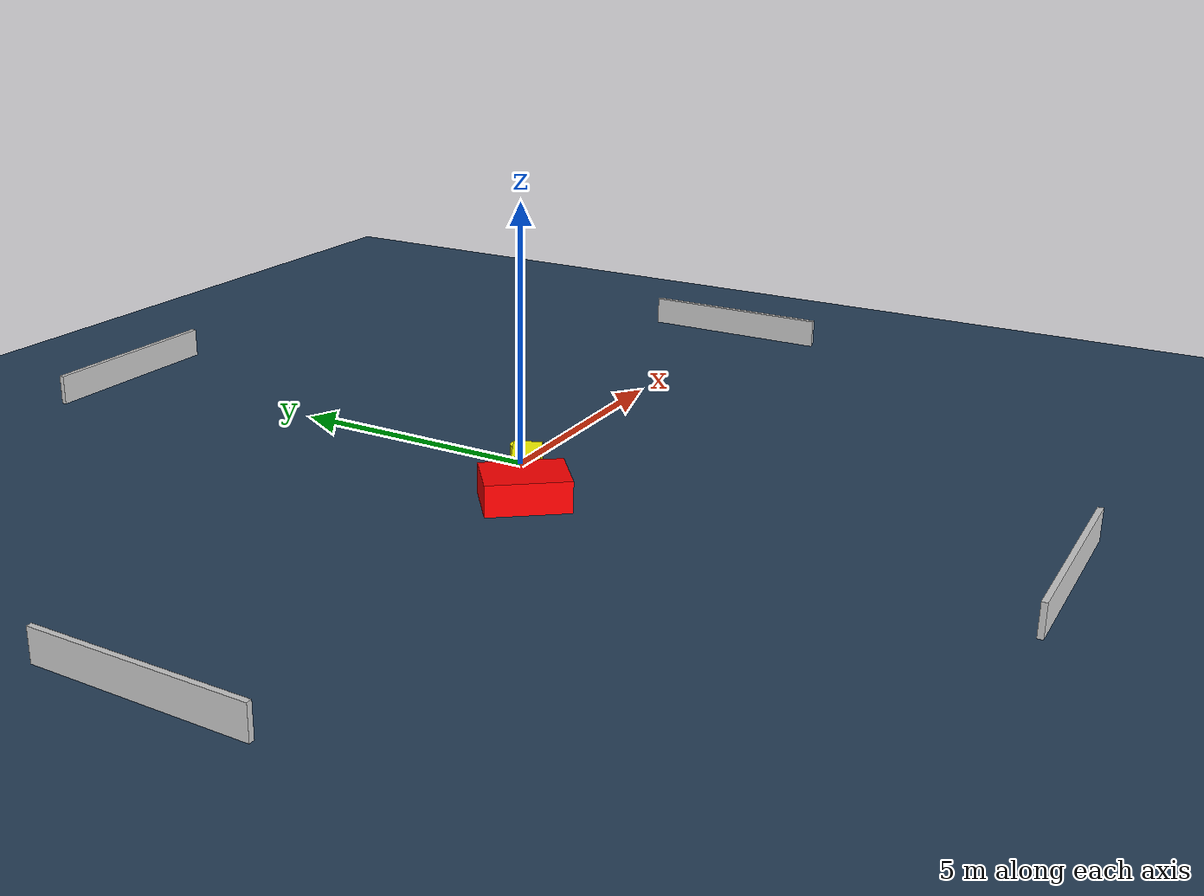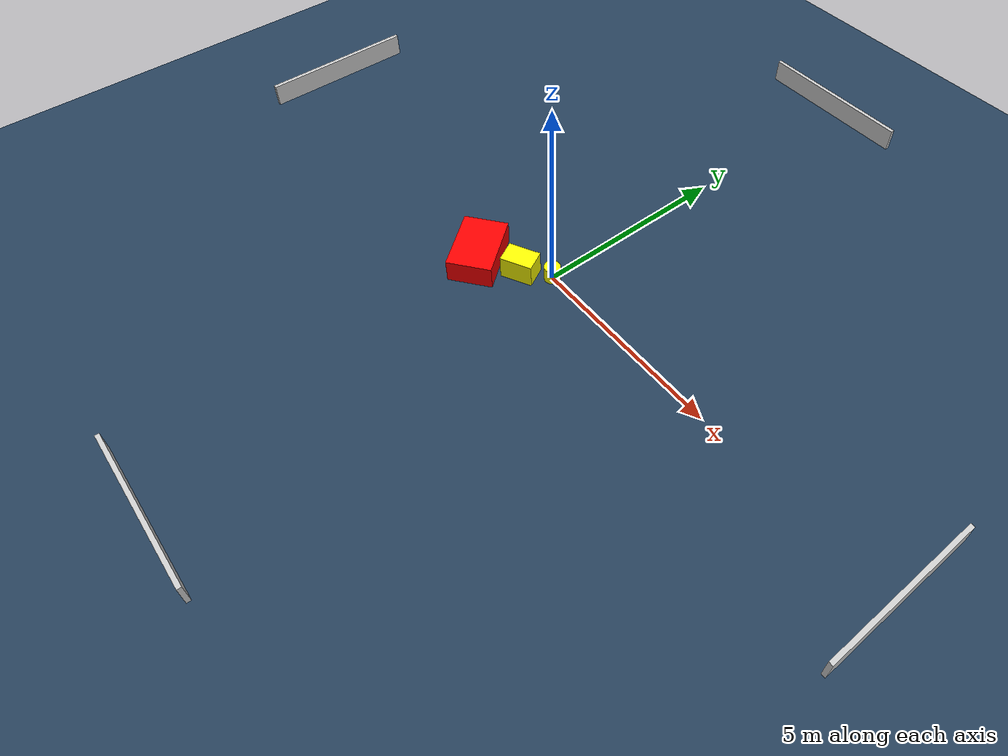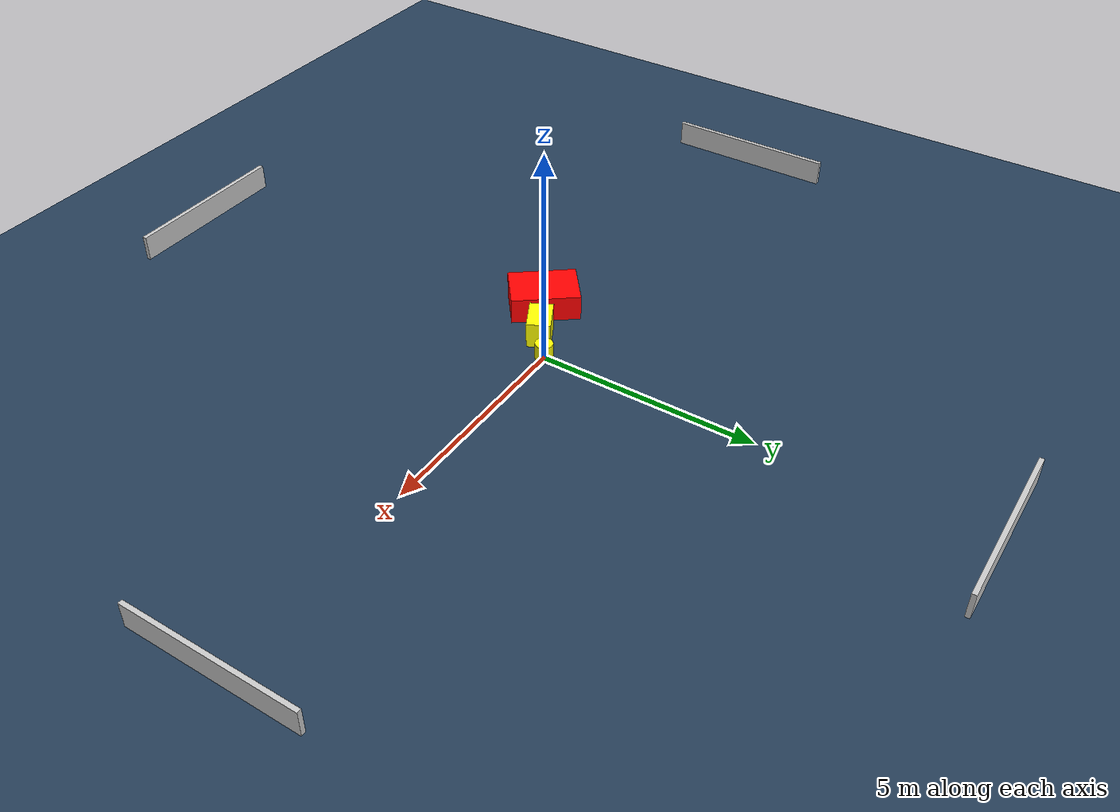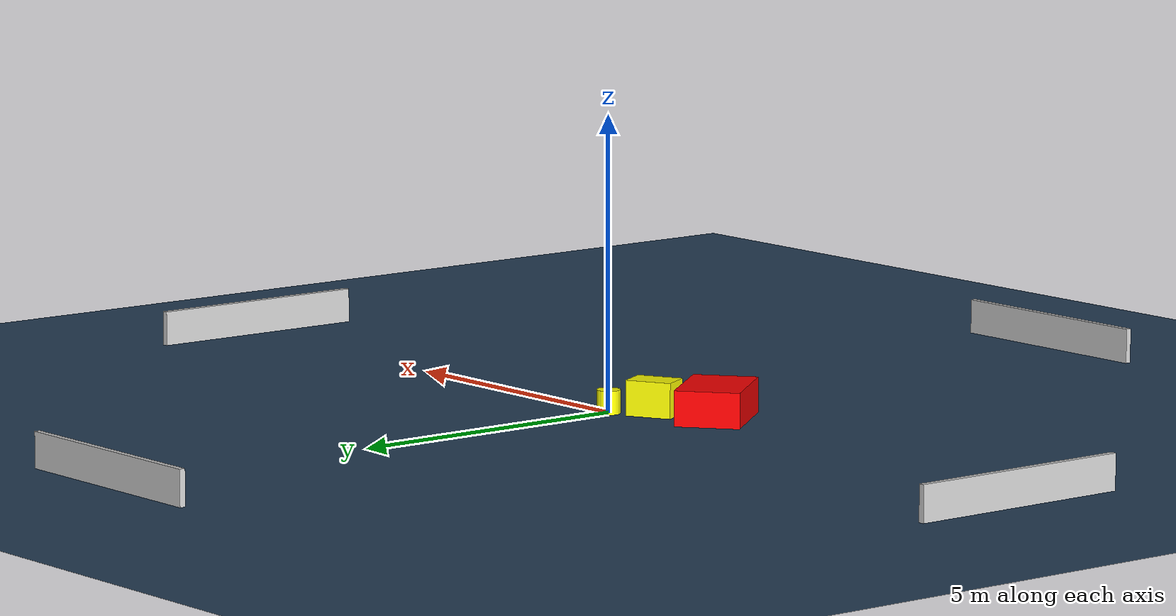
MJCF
<?xml version="1.0" ?>
<mujoco model="generated_environment">
  <option timestep="0.01" integrator="RK4" cone="elliptic"/>
  <default>
    <geom density="1"/>
  </default>
  <asset>
    <texture builtin="gradient" height="3072" name="skybox" rgb1="0.3 0.5 0.7" rgb2="0 0 0" type="skybox" width="512"/>
    <texture builtin="checker" height="300" name="groundplane" rgb1="0.2 0.3 0.4" rgb2="0.1 0.2 0.3" type="2d" width="300"/>
    <material name="groundplane" reflectance="0.2" texrepeat="5 5" texture="groundplane"/>
  </asset>
  <worldbody>
    <light dir="0 0 -1" directional="true" pos="0 0 1.5"/>
    <geom condim="3" friction="0.5 0.005 0.001" material="groundplane" name="floor" pos="0 0 0" size="0 0 0.05" type="plane"/>
    <body name="walls">
      <geom name="wall_1" condim="4" pos="-10.0 0.0 0.3" rgba="0.800000011920929 0.800000011920929 0.800000011920929 1.0" size="0.05 2.0 0.3" type="box"/>
      <geom name="wall_2" condim="4" pos="10.0 0.0 0.3" rgba="0.800000011920929 0.800000011920929 0.800000011920929 1.0" size="0.05 2.0 0.3" type="box"/>
      <geom name="wall_3" condim="4" pos="0.0 -10.0 0.3" rgba="0.800000011920929 0.800000011920929 0.800000011920929 1.0" size="2.0 0.05 0.3" type="box"/>
      <geom name="wall_4" condim="4" pos="0.0 10.0 0.3" rgba="0.800000011920929 0.800000011920929 0.800000011920929 1.0" size="2.0 0.05 0.3" type="box"/>
    </body>
    <body name="robot">
      <joint name="joint_x" type="slide" pos="0 0 0" axis="1 0 0"/>
      <joint name="joint_y" type="slide" pos="0 0 0" axis="0 1 0"/>
      <geom name="robot" type="cylinder" pos="0.0 0.0 0.2" size="0.2 0.2 0.0" mass="5.0" friction="1.0 0.005 0.0001" condim="4" rgba="1.0 1.0 0.0 1.0"/>
    </body>
    <body name="obstacle_1_movable">
      <geom name="obstacle_1_movable" condim="4" pos="-0.5950821749373686 -0.4910410854776817 0.3" euler="0 0 117.77422227879923" friction="0.0 0.005 0.001" rgba="1.0 1.0 0.0 1.0" size="0.2685013798927598 0.39980180262628995 0.3" type="box" mass="0.1"/>
      <joint type="free"/>
    </body>
    <body name="obstacle_2_static">
      <geom name="obstacle_2_static" condim="4" pos="-1.5669220815556864 -1.023202820312695 0.3" euler="0 0 38.494961501334295" friction="0.0 0.005 0.001" rgba="1.0 0.0 0.0 1.0" size="0.5503488206132395 0.7806234942641852 0.3" type="box"/>
    </body>
  </worldbody>
  <actuator>
    <motor name="actuator_x" joint="joint_x" gear="1" ctrlrange="-1 1"/>
    <motor name="actuator_y" joint="joint_y" gear="1" ctrlrange="-1 1"/>
  </actuator>
</mujoco>
